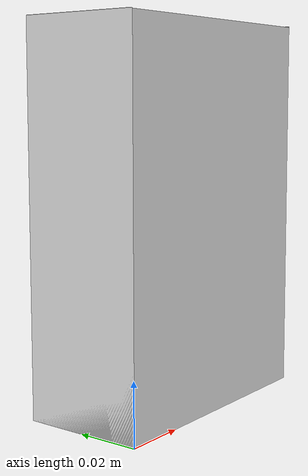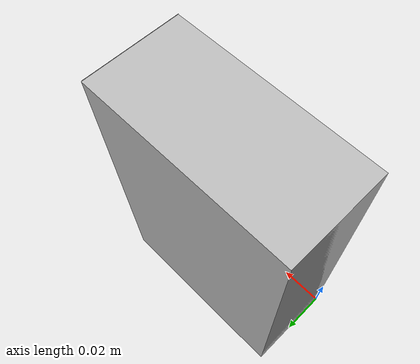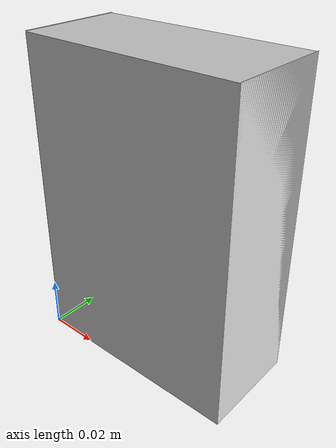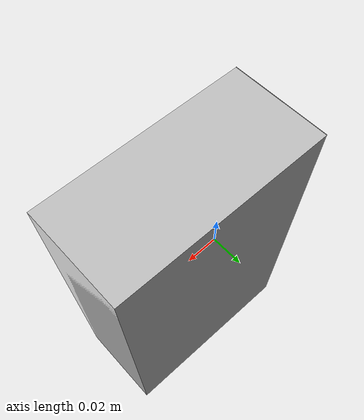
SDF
<?xml version="1.0" ?>
<sdf version="1.4">
  <model name="juice_box">
    <static>0</static>
    <link name="link">
      <collision name="colision">
        <pose>0 0 0 0 0 0</pose>
          <geometry>
            <box>
              <size>0.04 0.06 0.02</size>
            </box>
          </geometry>
        <surface>
          <friction>
            <ode>
              <mu>30.0</mu>
              <mu2>30.0</mu2>
              <fdir1>0 0 0</fdir1>
            </ode>
          </friction>
          <contact>
            <ode>
              <kp>1000000.0</kp>
              <kd>100.0</kd>
              <min_depth>0.0025</min_depth>
              <max_vel>1.0</max_vel>
            </ode>
          </contact>
        </surface>
      </collision>

      <visual name="visual1">
        <pose>0 0 0 0 0 0</pose>
        <geometry>
          <mesh>
            <uri>model://juice_box/meshes/model.dae</uri>
	    <scale> 0.075 0.075 0.075 </scale>
          </mesh>
        </geometry>
      </visual>

      <velocity_decay>
        <linear>0.000000</linear>
        <angular>0.000000</angular>
      </velocity_decay>
      <self_collide>0</self_collide>
      <kinematic>0</kinematic>
      <gravity>1</gravity>
    </link>
  </model>
</sdf>
